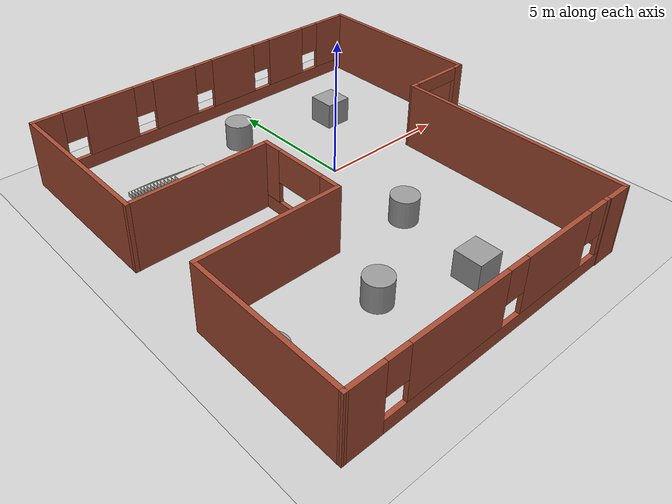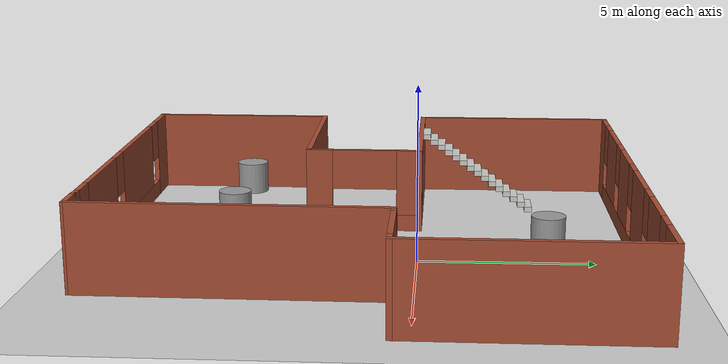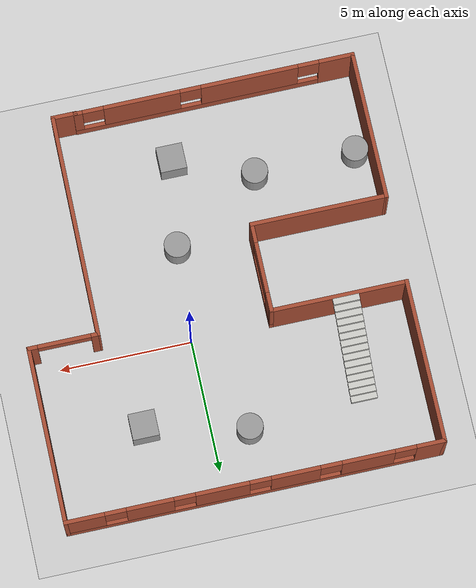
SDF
<sdf version="1.7">
 <world name="default">
  <light name="sun" type="directional">
   <pose>0 0 10 0 -0 0</pose>
   <diffuse>0.8 0.8 0.8 1</diffuse>
   <specular>0.2 0.2 0.2 1</specular>
   <attenuation>
    <range>1000</range>
    <constant>0.9</constant>
    <linear>0.01</linear>
    <quadratic>0.001</quadratic>
   </attenuation>
   <direction>-0.5 0.1 -0.9</direction>
   <spot><inner_angle>0</inner_angle><outer_angle>0</outer_angle><falloff>0</falloff></spot>
  </light>
  <model name="ground_plane">
   <static>1</static>
   <link name="link">
    <collision name="collision">
     <geometry><plane><normal>0 0 1</normal><size>100 100</size></plane></geometry>
     <surface>
      <contact><collide_bitmask>65535</collide_bitmask></contact>
      <friction><ode><mu>100</mu><mu2>50</mu2></ode></friction>
     </surface>
    </collision>
    <visual name="visual">
     <cast_shadows>0</cast_shadows>
     <geometry><plane><normal>0 0 1</normal><size>100 100</size></plane></geometry>
     <material>
      <script><uri>file://media/materials/scripts/gazebo.material</uri><name>Gazebo/Grey</name></script>
     </material>
    </visual>
   </link>
  </model>
  <gravity>0 0 -9.8</gravity>
  <magnetic_field>6e-06 2.3e-05 -4.2e-05</magnetic_field>
  <atmosphere type="adiabatic"/>
  <physics type="ode">
   <max_step_size>0.001</max_step_size>
   <real_time_factor>1</real_time_factor>
   <real_time_update_rate>1000</real_time_update_rate>
  </physics>
  <scene><ambient>0.4 0.4 0.4 1</ambient><background>0.7 0.7 0.7 1</background><shadows>1</shadows></scene>
  <spherical_coordinates>
   <surface_model>EARTH_WGS84</surface_model>
   <latitude_deg>0</latitude_deg>
   <longitude_deg>0</longitude_deg>
   <elevation>0</elevation>
   <heading_deg>0</heading_deg>
  </spherical_coordinates>
  <model name="office_env">
   <pose>-1.09116 -1.42707 0 0 -0 0</pose>
   <link name="Stairs_0">
    <visual name="Stairs_0_Visual_0">
     <pose>-4.72994 4.87188 0.083333 0 -0 0</pose>
     <geometry><box><size>1 0.233333 0.166667</size></box></geometry>
     <material>
      <script><uri>file://media/materials/scripts/gazebo.material</uri><name>Gazebo/CeilingTiled</name></script>
      <ambient>1 1 1 1</ambient>
     </material>
     <meta><layer>0</layer></meta>
    </visual>
    <collision name="Stairs_0_Collision_0">
     <geometry><box><size>1 0.233333 0.166667</size></box></geometry>
     <pose>-4.72994 4.87188 0.083333 0 -0 0</pose>
    </collision>
    <visual name="Stairs_0_Visual_1">
     <pose>-4.72994 4.63855 0.25 0 -0 0</pose>
     <geometry><box><size>1 0.233333 0.166667</size></box></geometry>
     <material>
      <script><uri>file://media/materials/scripts/gazebo.material</uri><name>Gazebo/CeilingTiled</name></script>
      <ambient>1 1 1 1</ambient>
     </material>
     <meta><layer>0</layer></meta>
    </visual>
    <collision name="Stairs_0_Collision_1">
     <geometry><box><size>1 0.233333 0.166667</size></box></geometry>
     <pose>-4.72994 4.63855 0.25 0 -0 0</pose>
    </collision>
    <visual name="Stairs_0_Visual_2">
     <pose>-4.72994 4.40522 0.416667 0 -0 0</pose>
     <geometry><box><size>1 0.233333 0.166667</size></box></geometry>
     <material>
      <script><uri>file://media/materials/scripts/gazebo.material</uri><name>Gazebo/CeilingTiled</name></script>
      <ambient>1 1 1 1</ambient>
     </material>
     <meta><layer>0</layer></meta>
    </visual>
    <collision name="Stairs_0_Collision_2">
     <geometry><box><size>1 0.233333 0.166667</size></box></geometry>
     <pose>-4.72994 4.40522 0.416667 0 -0 0</pose>
    </collision>
    <visual name="Stairs_0_Visual_3">
     <pose>-4.72994 4.17188 0.583333 0 -0 0</pose>
     <geometry><box><size>1 0.233333 0.166667</size></box></geometry>
     <material>
      <script><uri>file://media/materials/scripts/gazebo.material</uri><name>Gazebo/CeilingTiled</name></script>
      <ambient>1 1 1 1</ambient>
     </material>
     <meta><layer>0</layer></meta>
    </visual>
    <collision name="Stairs_0_Collision_3">
     <geometry><box><size>1 0.233333 0.166667</size></box></geometry>
     <pose>-4.72994 4.17188 0.583333 0 -0 0</pose>
    </collision>
    <visual name="Stairs_0_Visual_4">
     <pose>-4.72994 3.93855 0.75 0 -0 0</pose>
     <geometry><box><size>1 0.233333 0.166667</size></box></geometry>
     <material>
      <script><uri>file://media/materials/scripts/gazebo.material</uri><name>Gazebo/CeilingTiled</name></script>
      <ambient>1 1 1 1</ambient>
     </material>
     <meta><layer>0</layer></meta>
    </visual>
    <collision name="Stairs_0_Collision_4">
     <geometry><box><size>1 0.233333 0.166667</size></box></geometry>
     <pose>-4.72994 3.93855 0.75 0 -0 0</pose>
    </collision>
    <visual name="Stairs_0_Visual_5">
     <pose>-4.72994 3.70521 0.916667 0 -0 0</pose>
     <geometry><box><size>1 0.233333 0.166667</size></box></geometry>
     <material>
      <script><uri>file://media/materials/scripts/gazebo.material</uri><name>Gazebo/CeilingTiled</name></script>
      <ambient>1 1 1 1</ambient>
     </material>
     <meta><layer>0</layer></meta>
    </visual>
    <collision name="Stairs_0_Collision_5">
     <geometry><box><size>1 0.233333 0.166667</size></box></geometry>
     <pose>-4.72994 3.70521 0.916667 0 -0 0</pose>
    </collision>
    <visual name="Stairs_0_Visual_6">
     <pose>-4.72994 3.47188 1.08333 0 -0 0</pose>
     <geometry><box><size>1 0.233333 0.166667</size></box></geometry>
     <material>
      <script><uri>file://media/materials/scripts/gazebo.material</uri><name>Gazebo/CeilingTiled</name></script>
      <ambient>1 1 1 1</ambient>
     </material>
     <meta><layer>0</layer></meta>
    </visual>
    <collision name="Stairs_0_Collision_6">
     <geometry><box><size>1 0.233333 0.166667</size></box></geometry>
     <pose>-4.72994 3.47188 1.08333 0 -0 0</pose>
    </collision>
    <visual name="Stairs_0_Visual_7">
     <pose>-4.72994 3.23855 1.25 0 -0 0</pose>
     <geometry><box><size>1 0.233333 0.166667</size></box></geometry>
     <material>
      <script><uri>file://media/materials/scripts/gazebo.material</uri><name>Gazebo/CeilingTiled</name></script>
      <ambient>1 1 1 1</ambient>
     </material>
     <meta><layer>0</layer></meta>
    </visual>
    <collision name="Stairs_0_Collision_7">
     <geometry><box><size>1 0.233333 0.166667</size></box></geometry>
     <pose>-4.72994 3.23855 1.25 0 -0 0</pose>
    </collision>
    <visual name="Stairs_0_Visual_8">
     <pose>-4.72994 3.00522 1.41667 0 -0 0</pose>
     <geometry><box><size>1 0.233333 0.166667</size></box></geometry>
     <material>
      <script><uri>file://media/materials/scripts/gazebo.material</uri><name>Gazebo/CeilingTiled</name></script>
      <ambient>1 1 1 1</ambient>
     </material>
     <meta><layer>0</layer></meta>
    </visual>
    <collision name="Stairs_0_Collision_8">
     <geometry><box><size>1 0.233333 0.166667</size></box></geometry>
     <pose>-4.72994 3.00522 1.41667 0 -0 0</pose>
    </collision>
    <visual name="Stairs_0_Visual_9">
     <pose>-4.72994 2.77188 1.58333 0 -0 0</pose>
     <geometry><box><size>1 0.233333 0.166667</size></box></geometry>
     <material>
      <script><uri>file://media/materials/scripts/gazebo.material</uri><name>Gazebo/CeilingTiled</name></script>
      <ambient>1 1 1 1</ambient>
     </material>
     <meta><layer>0</layer></meta>
    </visual>
    <collision name="Stairs_0_Collision_9">
     <geometry><box><size>1 0.233333 0.166667</size></box></geometry>
     <pose>-4.72994 2.77188 1.58333 0 -0 0</pose>
    </collision>
    <visual name="Stairs_0_Visual_10">
     <pose>-4.72994 2.53855 1.75 0 -0 0</pose>
     <geometry><box><size>1 0.233333 0.166667</size></box></geometry>
     <material>
      <script><uri>file://media/materials/scripts/gazebo.material</uri><name>Gazebo/CeilingTiled</name></script>
      <ambient>1 1 1 1</ambient>
     </material>
     <meta><layer>0</layer></meta>
    </visual>
    <collision name="Stairs_0_Collision_10">
     <geometry><box><size>1 0.233333 0.166667</size></box></geometry>
     <pose>-4.72994 2.53855 1.75 0 -0 0</pose>
    </collision>
    <visual name="Stairs_0_Visual_11">
     <pose>-4.72994 2.30522 1.91667 0 -0 0</pose>
     <geometry><box><size>1 0.233333 0.166667</size></box></geometry>
     <material>
      <script><uri>file://media/materials/scripts/gazebo.material</uri><name>Gazebo/CeilingTiled</name></script>
      <ambient>1 1 1 1</ambient>
     </material>
     <meta><layer>0</layer></meta>
    </visual>
    <collision name="Stairs_0_Collision_11">
     <geometry><box><size>1 0.233333 0.166667</size></box></geometry>
     <pose>-4.72994 2.30522 1.91667 0 -0 0</pose>
    </collision>
    <visual name="Stairs_0_Visual_12">
     <pose>-4.72994 2.07188 2.08333 0 -0 0</pose>
     <geometry><box><size>1 0.233333 0.166667</size></box></geometry>
     <material>
      <script><uri>file://media/materials/scripts/gazebo.material</uri><name>Gazebo/CeilingTiled</name></script>
      <ambient>1 1 1 1</ambient>
     </material>
     <meta><layer>0</layer></meta>
    </visual>
    <collision name="Stairs_0_Collision_12">
     <geometry><box><size>1 0.233333 0.166667</size></box></geometry>
     <pose>-4.72994 2.07188 2.08333 0 -0 0</pose>
    </collision>
    <visual name="Stairs_0_Visual_13">
     <pose>-4.72994 1.83855 2.25 0 -0 0</pose>
     <geometry><box><size>1 0.233333 0.166667</size></box></geometry>
     <material>
      <script><uri>file://media/materials/scripts/gazebo.material</uri><name>Gazebo/CeilingTiled</name></script>
      <ambient>1 1 1 1</ambient>
     </material>
     <meta><layer>0</layer></meta>
    </visual>
    <collision name="Stairs_0_Collision_13">
     <geometry><box><size>1 0.233333 0.166667</size></box></geometry>
     <pose>-4.72994 1.83855 2.25 0 -0 0</pose>
    </collision>
    <visual name="Stairs_0_Visual_14">
     <pose>-4.72994 1.60522 2.41667 0 -0 0</pose>
     <geometry><box><size>1 0.233333 0.166667</size></box></geometry>
     <material>
      <script><uri>file://media/materials/scripts/gazebo.material</uri><name>Gazebo/CeilingTiled</name></script>
      <ambient>1 1 1 1</ambient>
     </material>
     <meta><layer>0</layer></meta>
    </visual>
    <collision name="Stairs_0_Collision_14">
     <geometry><box><size>1 0.233333 0.166667</size></box></geometry>
     <pose>-4.72994 1.60522 2.41667 0 -0 0</pose>
    </collision>
   </link>
   <link name="Wall_0">
    <pose>-1.74988 -7.50474 0 0 -0 0.003795</pose>
    <visual name="Wall_0_Visual_0">
     <pose>-4.68794 0 1.25 0 -0 0</pose>
     <geometry><box><size>1.37412 0.15 2.5</size></box></geometry>
     <material>
      <script><uri>file://media/materials/scripts/gazebo.material</uri><name>Gazebo/Bricks</name></script>
      <ambient>1 1 1 1</ambient>
     </material>
     <meta><layer>0</layer></meta>
    </visual>
    <collision name="Wall_0_Collision_0">
     <geometry><box><size>1.37412 0.15 2.5</size></box></geometry>
     <pose>-4.68794 0 1.25 0 -0 0</pose>
    </collision>
    <visual name="Wall_0_Visual_1">
     <pose>0.687061 0 0.25 0 -0 0</pose>
     <geometry><box><size>9.37588 0.15 0.5</size></box></geometry>
     <material>
      <script><uri>file://media/materials/scripts/gazebo.material</uri><name>Gazebo/Bricks</name></script>
      <ambient>1 1 1 1</ambient>
     </material>
     <meta><layer>0</layer></meta>
    </visual>
    <collision name="Wall_0_Collision_1">
     <geometry><box><size>9.37588 0.15 0.5</size></box></geometry>
     <pose>0.687061 0 0.25 0 -0 0</pose>
    </collision>
    <visual name="Wall_0_Visual_2">
     <pose>-1.34413 0 1.5 0 -0 0</pose>
     <geometry><box><size>3.71349 0.15 2</size></box></geometry>
     <material>
      <script><uri>file://media/materials/scripts/gazebo.material</uri><name>Gazebo/Bricks</name></script>
      <ambient>1 1 1 1</ambient>
     </material>
     <meta><layer>0</layer></meta>
    </visual>
    <collision name="Wall_0_Collision_2">
     <geometry><box><size>3.71349 0.15 2</size></box></geometry>
     <pose>-1.34413 0 1.5 0 -0 0</pose>
    </collision>
    <visual name="Wall_0_Visual_3">
     <pose>2.7732 0 1.5 0 -0 0</pose>
     <geometry><box><size>2.92118 0.15 2</size></box></geometry>
     <material>
      <script><uri>file://media/materials/scripts/gazebo.material</uri><name>Gazebo/Bricks</name></script>
      <ambient>1 1 1 1</ambient>
     </material>
     <meta><layer>0</layer></meta>
    </visual>
    <collision name="Wall_0_Collision_3">
     <geometry><box><size>2.92118 0.15 2</size></box></geometry>
     <pose>2.7732 0 1.5 0 -0 0</pose>
    </collision>
    <visual name="Wall_0_Visual_4">
     <pose>5.2044 0 1.5 0 -0 0</pose>
     <geometry><box><size>0.341205 0.15 2</size></box></geometry>
     <material>
      <script><uri>file://media/materials/scripts/gazebo.material</uri><name>Gazebo/Bricks</name></script>
      <ambient>1 1 1 1</ambient>
     </material>
     <meta><layer>0</layer></meta>
    </visual>
    <collision name="Wall_0_Collision_4">
     <geometry><box><size>0.341205 0.15 2</size></box></geometry>
     <pose>5.2044 0 1.5 0 -0 0</pose>
    </collision>
    <visual name="Wall_0_Visual_5">
     <pose>-3.60088 0 1.9 0 -0 0</pose>
     <geometry><box><size>0.8 0.15 1.2</size></box></geometry>
     <material>
      <script><uri>file://media/materials/scripts/gazebo.material</uri><name>Gazebo/Bricks</name></script>
      <ambient>1 1 1 1</ambient>
     </material>
     <meta><layer>0</layer></meta>
    </visual>
    <collision name="Wall_0_Collision_5">
     <geometry><box><size>0.8 0.15 1.2</size></box></geometry>
     <pose>-3.60088 0 1.9 0 -0 0</pose>
    </collision>
    <visual name="Wall_0_Visual_6">
     <pose>0.912615 0 1.9 0 -0 0</pose>
     <geometry><box><size>0.8 0.15 1.2</size></box></geometry>
     <material>
      <script><uri>file://media/materials/scripts/gazebo.material</uri><name>Gazebo/Bricks</name></script>
      <ambient>1 1 1 1</ambient>
     </material>
     <meta><layer>0</layer></meta>
    </visual>
    <collision name="Wall_0_Collision_6">
     <geometry><box><size>0.8 0.15 1.2</size></box></geometry>
     <pose>0.912615 0 1.9 0 -0 0</pose>
    </collision>
    <visual name="Wall_0_Visual_7">
     <pose>4.6338 0 1.9 0 -0 0</pose>
     <geometry><box><size>0.8 0.15 1.2</size></box></geometry>
     <material>
      <script><uri>file://media/materials/scripts/gazebo.material</uri><name>Gazebo/Bricks</name></script>
      <ambient>1 1 1 1</ambient>
     </material>
     <meta><layer>0</layer></meta>
    </visual>
    <collision name="Wall_0_Collision_7">
     <geometry><box><size>0.8 0.15 1.2</size></box></geometry>
     <pose>4.6338 0 1.9 0 -0 0</pose>
    </collision>
   </link>
   <link name="Wall_10">
    <collision name="Wall_10_Collision">
     <geometry><box><size>6.75 0.15 2.5</size></box></geometry>
     <pose>0 0 1.25 0 -0 0</pose>
    </collision>
    <visual name="Wall_10_Visual">
     <pose>0 0 1.25 0 -0 0</pose>
     <geometry><box><size>6.75 0.15 2.5</size></box></geometry>
     <material>
      <script><uri>file://media/materials/scripts/gazebo.material</uri><name>Gazebo/Bricks</name></script>
      <ambient>1 1 1 1</ambient>
     </material>
     <meta><layer>0</layer></meta>
    </visual>
    <pose>7.05012 4.22514 0 0 -0 -1.5708</pose>
   </link>
   <link name="Wall_11">
    <pose>5.75012 0.925142 0 0 -0 3.14159</pose>
    <visual name="Wall_11_Visual_0">
     <pose>-1.1723 0 1.25 0 -0 0</pose>
     <geometry><box><size>0.405406 0.15 2.5</size></box></geometry>
     <material>
      <script><uri>file://media/materials/scripts/gazebo.material</uri><name>Gazebo/Bricks</name></script>
      <ambient>1 1 1 1</ambient>
     </material>
     <meta><layer>0</layer></meta>
    </visual>
    <collision name="Wall_11_Collision_0">
     <geometry><box><size>0.405406 0.15 2.5</size></box></geometry>
     <pose>-1.1723 0 1.25 0 -0 0</pose>
    </collision>
    <visual name="Wall_11_Visual_1">
     <pose>1.20364 0 1.25 0 -0 0</pose>
     <geometry><box><size>0.34272 0.15 2.5</size></box></geometry>
     <material>
      <script><uri>file://media/materials/scripts/gazebo.material</uri><name>Gazebo/Bricks</name></script>
      <ambient>1 1 1 1</ambient>
     </material>
     <meta><layer>0</layer></meta>
    </visual>
    <collision name="Wall_11_Collision_1">
     <geometry><box><size>0.34272 0.15 2.5</size></box></geometry>
     <pose>1.20364 0 1.25 0 -0 0</pose>
    </collision>
    <visual name="Wall_11_Visual_2">
     <pose>0.031343 0 2.25 0 -0 0</pose>
     <geometry><box><size>2.00187 0.15 0.5</size></box></geometry>
     <material>
      <script><uri>file://media/materials/scripts/gazebo.material</uri><name>Gazebo/Bricks</name></script>
      <ambient>1 1 1 1</ambient>
     </material>
     <meta><layer>0</layer></meta>
    </visual>
    <collision name="Wall_11_Collision_2">
     <geometry><box><size>2.00187 0.15 0.5</size></box></geometry>
     <pose>0.031343 0 2.25 0 -0 0</pose>
    </collision>
   </link>
   <link name="Wall_12">
    <collision name="Wall_12_Collision">
     <geometry><box><size>8.58004 0.15 2.5</size></box></geometry>
     <pose>0 0 1.25 0 -0 0</pose>
    </collision>
    <visual name="Wall_12_Visual">
     <pose>0 0 1.25 0 -0 0</pose>
     <geometry><box><size>8.58004 0.15 2.5</size></box></geometry>
     <material>
      <script><uri>file://media/materials/scripts/gazebo.material</uri><name>Gazebo/Bricks</name></script>
      <ambient>1 1 1 1</ambient>
     </material>
     <meta><layer>0</layer></meta>
    </visual>
    <pose>4.42512 -3.2898 0 0 -0 -1.57673</pose>
   </link>
   <link name="Wall_13">
    <collision name="Wall_13_Collision">
     <geometry><box><size>1 0.15 2.5</size></box></geometry>
     <pose>0 0 1.25 0 -0 0</pose>
    </collision>
    <visual name="Wall_13_Visual">
     <pose>0 0 1.25 0 -0 0</pose>
     <geometry><box><size>1 0.15 2.5</size></box></geometry>
     <material>
      <script><uri>file://media/materials/scripts/gazebo.material</uri><name>Gazebo/Bricks</name></script>
      <ambient>1 1 1 1</ambient>
     </material>
     <meta><layer>0</layer></meta>
    </visual>
    <pose>3.97512 -7.50474 0 0 -0 3.14159</pose>
   </link>
   <link name="Wall_2">
    <collision name="Wall_2_Collision">
     <geometry><box><size>5.75 0.15 2.5</size></box></geometry>
     <pose>0 0 1.25 0 -0 0</pose>
    </collision>
    <visual name="Wall_2_Visual">
     <pose>0 0 1.25 0 -0 0</pose>
     <geometry><box><size>5.75 0.15 2.5</size></box></geometry>
     <material>
      <script><uri>file://media/materials/scripts/gazebo.material</uri><name>Gazebo/Bricks</name></script>
      <ambient>1 1 1 1</ambient>
     </material>
     <meta><layer>0</layer></meta>
    </visual>
    <pose>-7.04988 -4.72486 0 0 -0 1.5708</pose>
   </link>
   <link name="Wall_3">
    <collision name="Wall_3_Collision">
     <geometry><box><size>5.25 0.15 2.5</size></box></geometry>
     <pose>0 0 1.25 0 -0 0</pose>
    </collision>
    <visual name="Wall_3_Visual">
     <pose>0 0 1.25 0 -0 0</pose>
     <geometry><box><size>5.25 0.15 2.5</size></box></geometry>
     <material>
      <script><uri>file://media/materials/scripts/gazebo.material</uri><name>Gazebo/Bricks</name></script>
      <ambient>1 1 1 1</ambient>
     </material>
     <meta><layer>0</layer></meta>
    </visual>
    <pose>-4.49988 -1.92486 0 0 -0 0</pose>
   </link>
   <link name="Wall_4">
    <pose>-1.94988 -0.249858 0 0 -0 1.5708</pose>
    <visual name="Wall_4_Visual_0">
     <pose>-1.3523 0 1.25 0 -0 0</pose>
     <geometry><box><size>0.795401 0.15 2.5</size></box></geometry>
     <material>
      <script><uri>file://media/materials/scripts/gazebo.material</uri><name>Gazebo/Bricks</name></script>
      <ambient>1 1 1 1</ambient>
     </material>
     <meta><layer>0</layer></meta>
    </visual>
    <collision name="Wall_4_Collision_0">
     <geometry><box><size>0.795401 0.15 2.5</size></box></geometry>
     <pose>-1.3523 0 1.25 0 -0 0</pose>
    </collision>
    <visual name="Wall_4_Visual_1">
     <pose>0.3977 0 0.25 0 -0 0</pose>
     <geometry><box><size>2.7046 0.15 0.5</size></box></geometry>
     <material>
      <script><uri>file://media/materials/scripts/gazebo.material</uri><name>Gazebo/Bricks</name></script>
      <ambient>1 1 1 1</ambient>
     </material>
     <meta><layer>0</layer></meta>
    </visual>
    <collision name="Wall_4_Collision_1">
     <geometry><box><size>2.7046 0.15 0.5</size></box></geometry>
     <pose>0.3977 0 0.25 0 -0 0</pose>
    </collision>
    <visual name="Wall_4_Visual_2">
     <pose>1.3644 0 1.5 0 -0 0</pose>
     <geometry><box><size>0.771199 0.15 2</size></box></geometry>
     <material>
      <script><uri>file://media/materials/scripts/gazebo.material</uri><name>Gazebo/Bricks</name></script>
      <ambient>1 1 1 1</ambient>
     </material>
     <meta><layer>0</layer></meta>
    </visual>
    <collision name="Wall_4_Collision_2">
     <geometry><box><size>0.771199 0.15 2</size></box></geometry>
     <pose>1.3644 0 1.5 0 -0 0</pose>
    </collision>
    <visual name="Wall_4_Visual_3">
     <pose>0.012101 0 1.9 0 -0 0</pose>
     <geometry><box><size>1.9334 0.15 1.2</size></box></geometry>
     <material>
      <script><uri>file://media/materials/scripts/gazebo.material</uri><name>Gazebo/Bricks</name></script>
      <ambient>1 1 1 1</ambient>
     </material>
     <meta><layer>0</layer></meta>
    </visual>
    <collision name="Wall_4_Collision_3">
     <geometry><box><size>1.9334 0.15 1.2</size></box></geometry>
     <pose>0.012101 0 1.9 0 -0 0</pose>
    </collision>
   </link>
   <link name="Wall_5">
    <collision name="Wall_5_Collision">
     <geometry><box><size>5.25 0.15 2.5</size></box></geometry>
     <pose>0 0 1.25 0 -0 0</pose>
    </collision>
    <visual name="Wall_5_Visual">
     <pose>0 0 1.25 0 -0 0</pose>
     <geometry><box><size>5.25 0.15 2.5</size></box></geometry>
     <material>
      <script><uri>file://media/materials/scripts/gazebo.material</uri><name>Gazebo/Bricks</name></script>
      <ambient>1 1 1 1</ambient>
     </material>
     <meta><layer>0</layer></meta>
    </visual>
    <pose>-4.49988 1.42514 0 0 -0 3.14159</pose>
   </link>
   <link name="Wall_8">
    <collision name="Wall_8_Collision">
     <geometry><box><size>6.25 0.15 2.5</size></box></geometry>
     <pose>0 0 1.25 0 -0 0</pose>
    </collision>
    <visual name="Wall_8_Visual">
     <pose>0 0 1.25 0 -0 0</pose>
     <geometry><box><size>6.25 0.15 2.5</size></box></geometry>
     <material>
      <script><uri>file://media/materials/scripts/gazebo.material</uri><name>Gazebo/Bricks</name></script>
      <ambient>1 1 1 1</ambient>
     </material>
     <meta><layer>0</layer></meta>
    </visual>
    <pose>-7.04988 4.47514 0 0 -0 1.5708</pose>
   </link>
   <link name="Wall_9">
    <pose>0.000123 7.52514 0 0 -0 0</pose>
    <visual name="Wall_9_Visual_0">
     <pose>-6.56365 0 1.25 0 -0 0</pose>
     <geometry><box><size>1.1227 0.15 2.5</size></box></geometry>
     <material>
      <script><uri>file://media/materials/scripts/gazebo.material</uri><name>Gazebo/Bricks</name></script>
      <ambient>1 1 1 1</ambient>
     </material>
     <meta><layer>0</layer></meta>
    </visual>
    <collision name="Wall_9_Collision_0">
     <geometry><box><size>1.1227 0.15 2.5</size></box></geometry>
     <pose>-6.56365 0 1.25 0 -0 0</pose>
    </collision>
    <visual name="Wall_9_Visual_1">
     <pose>0.561349 0 0.25 0 -0 0</pose>
     <geometry><box><size>13.1273 0.15 0.5</size></box></geometry>
     <material>
      <script><uri>file://media/materials/scripts/gazebo.material</uri><name>Gazebo/Bricks</name></script>
      <ambient>1 1 1 1</ambient>
     </material>
     <meta><layer>0</layer></meta>
    </visual>
    <collision name="Wall_9_Collision_1">
     <geometry><box><size>13.1273 0.15 0.5</size></box></geometry>
     <pose>0.561349 0 0.25 0 -0 0</pose>
    </collision>
    <visual name="Wall_9_Visual_2">
     <pose>-4.21274 0 1.5 0 -0 0</pose>
     <geometry><box><size>1.97912 0.15 2</size></box></geometry>
     <material>
      <script><uri>file://media/materials/scripts/gazebo.material</uri><name>Gazebo/Bricks</name></script>
      <ambient>1 1 1 1</ambient>
     </material>
     <meta><layer>0</layer></meta>
    </visual>
    <collision name="Wall_9_Collision_2">
     <geometry><box><size>1.97912 0.15 2</size></box></geometry>
     <pose>-4.21274 0 1.5 0 -0 0</pose>
    </collision>
    <visual name="Wall_9_Visual_3">
     <pose>-1.50398 0 1.5 0 -0 0</pose>
     <geometry><box><size>1.83841 0.15 2</size></box></geometry>
     <material>
      <script><uri>file://media/materials/scripts/gazebo.material</uri><name>Gazebo/Bricks</name></script>
      <ambient>1 1 1 1</ambient>
     </material>
     <meta><layer>0</layer></meta>
    </visual>
    <collision name="Wall_9_Collision_3">
     <geometry><box><size>1.83841 0.15 2</size></box></geometry>
     <pose>-1.50398 0 1.5 0 -0 0</pose>
    </collision>
    <visual name="Wall_9_Visual_4">
     <pose>1.22238 0 1.5 0 -0 0</pose>
     <geometry><box><size>2.0143 0.15 2</size></box></geometry>
     <material>
      <script><uri>file://media/materials/scripts/gazebo.material</uri><name>Gazebo/Bricks</name></script>
      <ambient>1 1 1 1</ambient>
     </material>
     <meta><layer>0</layer></meta>
    </visual>
    <collision name="Wall_9_Collision_4">
     <geometry><box><size>2.0143 0.15 2</size></box></geometry>
     <pose>1.22238 0 1.5 0 -0 0</pose>
    </collision>
    <visual name="Wall_9_Visual_5">
     <pose>3.91355 0 1.5 0 -0 0</pose>
     <geometry><box><size>1.76805 0.15 2</size></box></geometry>
     <material>
      <script><uri>file://media/materials/scripts/gazebo.material</uri><name>Gazebo/Bricks</name></script>
      <ambient>1 1 1 1</ambient>
     </material>
     <meta><layer>0</layer></meta>
    </visual>
    <collision name="Wall_9_Collision_5">
     <geometry><box><size>1.76805 0.15 2</size></box></geometry>
     <pose>3.91355 0 1.5 0 -0 0</pose>
    </collision>
    <visual name="Wall_9_Visual_6">
     <pose>6.36129 0 1.5 0 -0 0</pose>
     <geometry><box><size>1.52742 0.15 2</size></box></geometry>
     <material>
      <script><uri>file://media/materials/scripts/gazebo.material</uri><name>Gazebo/Bricks</name></script>
      <ambient>1 1 1 1</ambient>
     </material>
     <meta><layer>0</layer></meta>
    </visual>
    <collision name="Wall_9_Collision_6">
     <geometry><box><size>1.52742 0.15 2</size></box></geometry>
     <pose>6.36129 0 1.5 0 -0 0</pose>
    </collision>
    <visual name="Wall_9_Visual_7">
     <pose>-5.6023 0 1.9 0 -0 0</pose>
     <geometry><box><size>0.8 0.15 1.2</size></box></geometry>
     <material>
      <script><uri>file://media/materials/scripts/gazebo.material</uri><name>Gazebo/Bricks</name></script>
      <ambient>1 1 1 1</ambient>
     </material>
     <meta><layer>0</layer></meta>
    </visual>
    <collision name="Wall_9_Collision_7">
     <geometry><box><size>0.8 0.15 1.2</size></box></geometry>
     <pose>-5.6023 0 1.9 0 -0 0</pose>
    </collision>
    <visual name="Wall_9_Visual_8">
     <pose>-2.82318 0 1.9 0 -0 0</pose>
     <geometry><box><size>0.8 0.15 1.2</size></box></geometry>
     <material>
      <script><uri>file://media/materials/scripts/gazebo.material</uri><name>Gazebo/Bricks</name></script>
      <ambient>1 1 1 1</ambient>
     </material>
     <meta><layer>0</layer></meta>
    </visual>
    <collision name="Wall_9_Collision_8">
     <geometry><box><size>0.8 0.15 1.2</size></box></geometry>
     <pose>-2.82318 0 1.9 0 -0 0</pose>
    </collision>
    <visual name="Wall_9_Visual_9">
     <pose>-0.184772 0 1.9 0 -0 0</pose>
     <geometry><box><size>0.8 0.15 1.2</size></box></geometry>
     <material>
      <script><uri>file://media/materials/scripts/gazebo.material</uri><name>Gazebo/Bricks</name></script>
      <ambient>1 1 1 1</ambient>
     </material>
     <meta><layer>0</layer></meta>
    </visual>
    <collision name="Wall_9_Collision_9">
     <geometry><box><size>0.8 0.15 1.2</size></box></geometry>
     <pose>-0.184772 0 1.9 0 -0 0</pose>
    </collision>
    <visual name="Wall_9_Visual_10">
     <pose>2.62953 0 1.9 0 -0 0</pose>
     <geometry><box><size>0.8 0.15 1.2</size></box></geometry>
     <material>
      <script><uri>file://media/materials/scripts/gazebo.material</uri><name>Gazebo/Bricks</name></script>
      <ambient>1 1 1 1</ambient>
     </material>
     <meta><layer>0</layer></meta>
    </visual>
    <collision name="Wall_9_Collision_10">
     <geometry><box><size>0.8 0.15 1.2</size></box></geometry>
     <pose>2.62953 0 1.9 0 -0 0</pose>
    </collision>
    <visual name="Wall_9_Visual_11">
     <pose>5.19758 0 1.9 0 -0 0</pose>
     <geometry><box><size>0.8 0.15 1.2</size></box></geometry>
     <material>
      <script><uri>file://media/materials/scripts/gazebo.material</uri><name>Gazebo/Bricks</name></script>
      <ambient>1 1 1 1</ambient>
     </material>
     <meta><layer>0</layer></meta>
    </visual>
    <collision name="Wall_9_Collision_11">
     <geometry><box><size>0.8 0.15 1.2</size></box></geometry>
     <pose>5.19758 0 1.9 0 -0 0</pose>
    </collision>
   </link>
   <static>1</static>
  </model>
  <model name="unit_cylinder">
   <pose>-3.69132 -5.74641 0.499998 3e-06 -4e-06 0</pose>
   <link name="link">
    <inertial>
     <mass>1</mass>
     <inertia><ixx>0.145833</ixx><ixy>0</ixy><ixz>0</ixz><iyy>0.145833</iyy><iyz>0</iyz><izz>0.125</izz></inertia>
    </inertial>
    <collision name="collision">
     <geometry><cylinder><radius>0.5</radius><length>1</length></cylinder></geometry>
    </collision>
    <visual name="visual">
     <geometry><cylinder><radius>0.5</radius><length>1</length></cylinder></geometry>
     <material>
      <script><name>Gazebo/Grey</name><uri>file://media/materials/scripts/gazebo.material</uri></script>
     </material>
    </visual>
   </link>
  </model>
  <model name="unit_cylinder_0">
   <pose>-1.40627 3.76317 0.499992 -3e-06 -4e-06 -0</pose>
   <link name="link">
    <inertial>
     <mass>1</mass>
     <inertia><ixx>0.145833</ixx><ixy>0</ixy><ixz>0</ixz><iyy>0.145833</iyy><iyz>0</iyz><izz>0.125</izz></inertia>
    </inertial>
    <collision name="collision">
     <geometry><cylinder><radius>0.5</radius><length>1</length></cylinder></geometry>
    </collision>
    <visual name="visual">
     <geometry><cylinder><radius>0.5</radius><length>1</length></cylinder></geometry>
     <material>
      <script><name>Gazebo/Grey</name><uri>file://media/materials/scripts/gazebo.material</uri></script>
     </material>
    </visual>
   </link>
  </model>
  <model name="unit_box">
   <pose>-0.736826 -6.90705 0.499995 -1e-05 0 0</pose>
   <link name="link">
    <inertial>
     <mass>1</mass>
     <inertia>
      <ixx>0.166667</ixx>
      <ixy>0</ixy>
      <ixz>0</ixz>
      <iyy>0.166667</iyy>
      <iyz>0</iyz>
      <izz>0.166667</izz>
     </inertia>
    </inertial>
    <collision name="collision"><geometry><box><size>1 1 1</size></box></geometry></collision>
    <visual name="visual">
     <geometry><box><size>1 1 1</size></box></geometry>
     <material>
      <script><name>Gazebo/Grey</name><uri>file://media/materials/scripts/gazebo.material</uri></script>
     </material>
    </visual>
   </link>
  </model>
  <model name="unit_cylinder_1">
   <pose>-0.242173 -3.56553 0.499997 3e-06 4e-06 -0</pose>
   <link name="link">
    <inertial>
     <mass>1</mass>
     <inertia><ixx>0.145833</ixx><ixy>0</ixy><ixz>0</ixz><iyy>0.145833</iyy><iyz>0</iyz><izz>0.125</izz></inertia>
    </inertial>
    <collision name="collision">
     <geometry><cylinder><radius>0.5</radius><length>1</length></cylinder></geometry>
    </collision>
    <visual name="visual">
     <geometry><cylinder><radius>0.5</radius><length>1</length></cylinder></geometry>
     <material>
      <script><name>Gazebo/Grey</name><uri>file://media/materials/scripts/gazebo.material</uri></script>
     </material>
    </visual>
   </link>
  </model>
  <model name="unit_box_0">
   <pose>2.41409 2.87025 0.499995 -1e-05 0 0</pose>
   <link name="link">
    <inertial>
     <mass>1</mass>
     <inertia>
      <ixx>0.166667</ixx>
      <ixy>0</ixy>
      <ixz>0</ixz>
      <iyy>0.166667</iyy>
      <iyz>0</iyz>
      <izz>0.166667</izz>
     </inertia>
    </inertial>
    <collision name="collision"><geometry><box><size>1 1 1</size></box></geometry></collision>
    <visual name="visual">
     <geometry><box><size>1 1 1</size></box></geometry>
     <material>
      <script><name>Gazebo/Grey</name><uri>file://media/materials/scripts/gazebo.material</uri></script>
     </material>
    </visual>
   </link>
  </model>
  <model name="unit_cylinder_2">
   <pose>-7.56603 -5.78223 0.499998 3e-06 4e-06 -0</pose>
   <link name="link">
    <inertial>
     <mass>1</mass>
     <inertia><ixx>0.145833</ixx><ixy>0</ixy><ixz>0</ixz><iyy>0.145833</iyy><iyz>0</iyz><izz>0.125</izz></inertia>
    </inertial>
    <collision name="collision">
     <geometry><cylinder><radius>0.5</radius><length>1</length></cylinder></geometry>
    </collision>
    <visual name="visual">
     <geometry><cylinder><radius>0.5</radius><length>1</length></cylinder></geometry>
     <material>
      <script><name>Gazebo/Grey</name><uri>file://media/materials/scripts/gazebo.material</uri></script>
     </material>
    </visual>
   </link>
  </model>
 </world>
</sdf>
